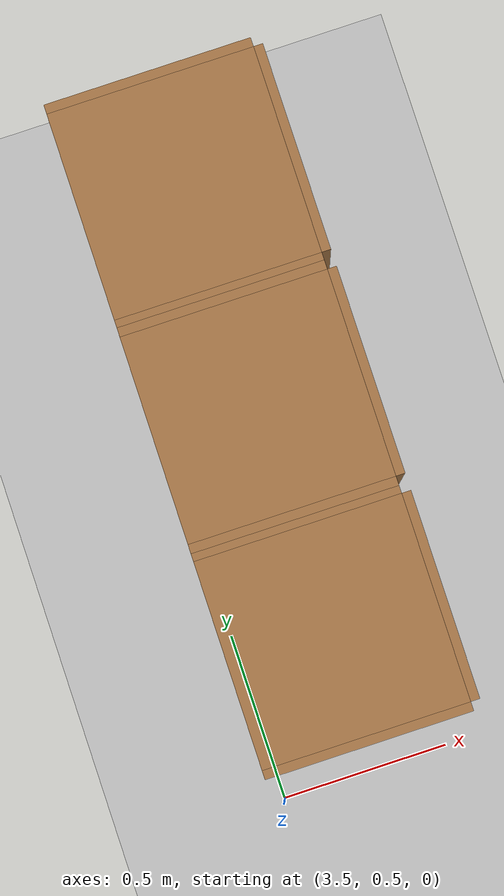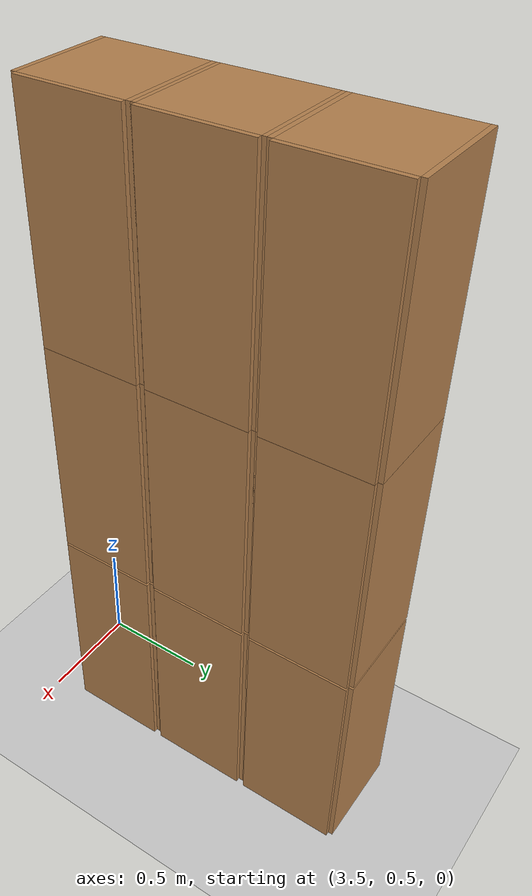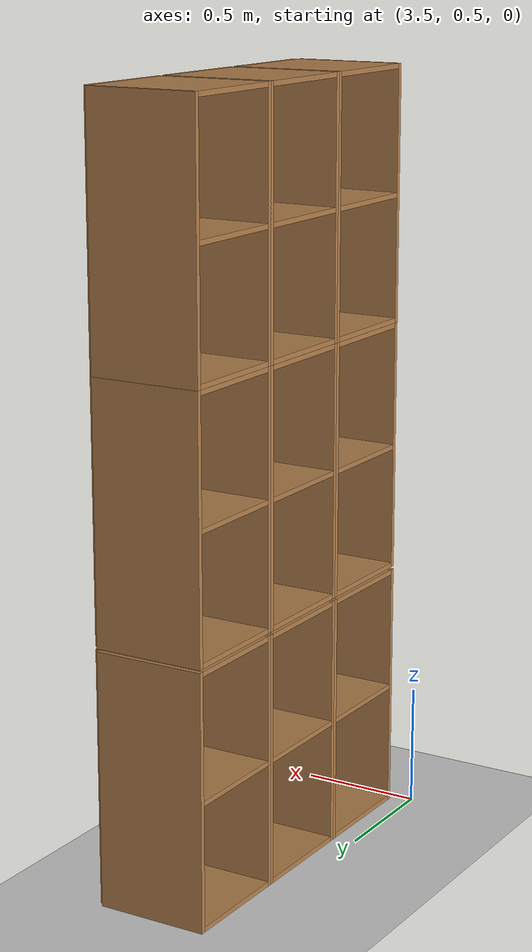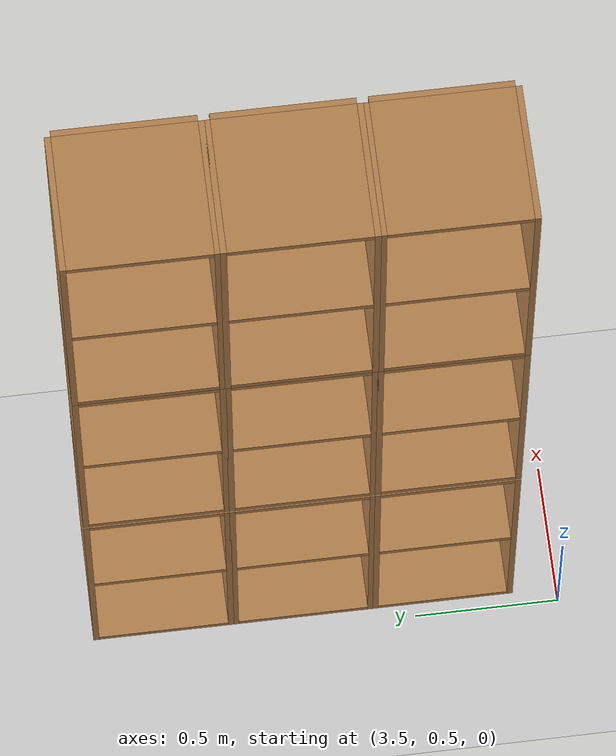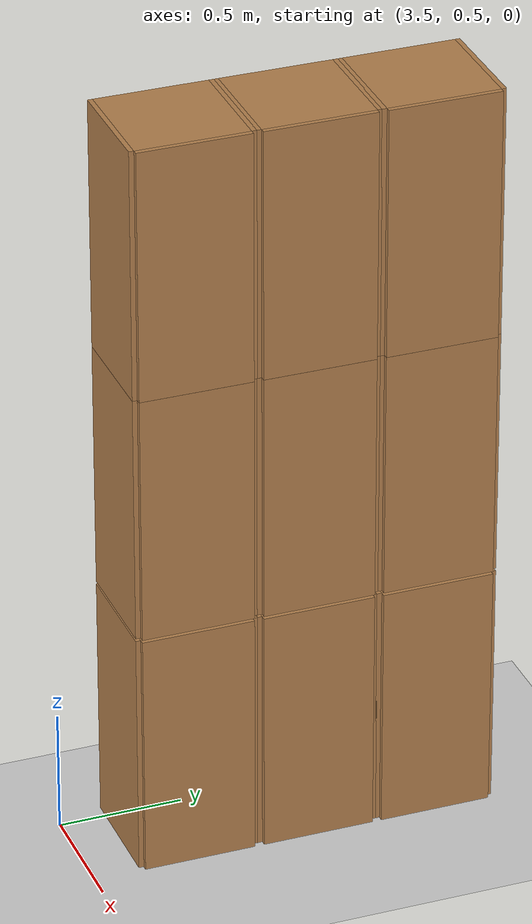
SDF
<sdf version="1.6">
 <world name="default">
  <model name="ground_plane">
   <static>1</static>
   <link name="link">
    <collision name="collision">
     <geometry><plane><normal>0 0 1</normal><size>100 100</size></plane></geometry>
     <surface>
      <contact><collide_bitmask>65535</collide_bitmask></contact>
      <friction><ode><mu>100</mu><mu2>50</mu2></ode></friction>
     </surface>
    </collision>
    <visual name="visual">
     <cast_shadows>0</cast_shadows>
     <geometry><plane><normal>0 0 1</normal><size>100 100</size></plane></geometry>
     <material>
      <script><uri>file://media/materials/scripts/gazebo.material</uri><name>Gazebo/Grey</name></script>
     </material>
    </visual>
   </link>
  </model>
  <model name="Locker18_clone_4_clone_1_clone_0">
   <model name="Locker18">
    <model name="Locker3">
     <model name="cabinet">
      <static>1</static>
      <link name="cabinet_bottom_plate">
       <inertial>
        <pose>0 0 -1 0 -0 0</pose>
        <inertia><ixx>2.05</ixx><ixy>0</ixy><ixz>0</ixz><iyy>2.05</iyy><iyz>0</iyz><izz>2.05</izz></inertia>
        <mass>25</mass>
       </inertial>
       <collision name="cabinet_bottom_plate_geom">
        <pose>0 0 0.01 0 -0 0</pose>
        <geometry><box><size>0.45 0.45 0.02</size></box></geometry>
       </collision>
       <visual name="cabinet_bottom_plate_geom_visual">
        <pose>0 0 0.01 0 -0 0</pose>
        <geometry><box><size>0.45 0.45 0.02</size></box></geometry>
        <material>
         <script><uri>file://media/materials/scripts/gazebo.material</uri><name>Gazebo/Wood</name></script>
        </material>
       </visual>
       <collision name="cabinet_bottom_plate_geom_cabinet_back_plate">
        <pose>0.235 0 0.51 0 -0 0</pose>
        <geometry><box><size>0.02 0.45 1.02</size></box></geometry>
       </collision>
       <visual name="cabinet_bottom_plate_geom_cabinet_back_plate_visual">
        <pose>0.235 0 0.51 0 -0 0</pose>
        <geometry><box><size>0.02 0.45 1.02</size></box></geometry>
        <material>
         <script><uri>file://media/materials/scripts/gazebo.material</uri><name>Gazebo/Wood</name></script>
        </material>
       </visual>
       <collision name="cabinet_bottom_plate_geom_cabinet_left_plate">
        <pose>0 0.235 0.51 0 -0 0</pose>
        <geometry><box><size>0.45 0.02 1.02</size></box></geometry>
       </collision>
       <visual name="cabinet_bottom_plate_geom_cabinet_left_plate_visual">
        <pose>0 0.235 0.51 0 -0 0</pose>
        <geometry><box><size>0.45 0.02 1.02</size></box></geometry>
        <material>
         <script><uri>file://media/materials/scripts/gazebo.material</uri><name>Gazebo/Wood</name></script>
        </material>
       </visual>
       <collision name="cabinet_bottom_plate_geom_cabinet_middle_plate">
        <pose>0 0 0.51 0 -0 0</pose>
        <geometry><box><size>0.45 0.45 0.02</size></box></geometry>
       </collision>
       <visual name="cabinet_bottom_plate_geom_cabinet_middle_plate_visual">
        <pose>0 0 0.51 0 -0 0</pose>
        <geometry><box><size>0.45 0.45 0.02</size></box></geometry>
        <material>
         <script><uri>file://media/materials/scripts/gazebo.material</uri><name>Gazebo/Wood</name></script>
        </material>
       </visual>
       <collision name="cabinet_bottom_plate_geom_cabinet_right_plate">
        <pose>0 -0.235 0.51 0 -0 0</pose>
        <geometry><box><size>0.45 0.02 1.02</size></box></geometry>
       </collision>
       <visual name="cabinet_bottom_plate_geom_cabinet_right_plate_visual">
        <pose>0 -0.235 0.51 0 -0 0</pose>
        <geometry><box><size>0.45 0.02 1.02</size></box></geometry>
        <material>
         <script><uri>file://media/materials/scripts/gazebo.material</uri><name>Gazebo/Wood</name></script>
        </material>
       </visual>
       <collision name="cabinet_bottom_plate_geom_cabinet_top_plate">
        <pose>0 0 1.01 0 -0 0</pose>
        <geometry><box><size>0.45 0.45 0.02</size></box></geometry>
       </collision>
       <visual name="cabinet_bottom_plate_geom_cabinet_top_plate_visual">
        <pose>0 0 1.01 0 -0 0</pose>
        <geometry><box><size>0.45 0.45 0.02</size></box></geometry>
        <material>
         <script><uri>file://media/materials/scripts/gazebo.material</uri><name>Gazebo/Wood</name></script>
        </material>
       </visual>
      </link>
      <pose>-0.676968 1.45758 0 0 -0 0</pose>
     </model>
     <model name="cabinet_clone">
      <static>1</static>
      <link name="cabinet_bottom_plate">
       <inertial>
        <pose>0 0 -1 0 -0 0</pose>
        <inertia><ixx>2.05</ixx><ixy>0</ixy><ixz>0</ixz><iyy>2.05</iyy><iyz>0</iyz><izz>2.05</izz></inertia>
        <mass>25</mass>
       </inertial>
       <collision name="cabinet_bottom_plate_geom">
        <pose>0 0 0.01 0 -0 0</pose>
        <geometry><box><size>0.45 0.45 0.02</size></box></geometry>
       </collision>
       <visual name="cabinet_bottom_plate_geom_visual">
        <pose>0 0 0.01 0 -0 0</pose>
        <geometry><box><size>0.45 0.45 0.02</size></box></geometry>
        <material>
         <script><uri>file://media/materials/scripts/gazebo.material</uri><name>Gazebo/Wood</name></script>
        </material>
       </visual>
       <collision name="cabinet_bottom_plate_geom_cabinet_back_plate">
        <pose>0.235 0 0.51 0 -0 0</pose>
        <geometry><box><size>0.02 0.45 1.02</size></box></geometry>
       </collision>
       <visual name="cabinet_bottom_plate_geom_cabinet_back_plate_visual">
        <pose>0.235 0 0.51 0 -0 0</pose>
        <geometry><box><size>0.02 0.45 1.02</size></box></geometry>
        <material>
         <script><uri>file://media/materials/scripts/gazebo.material</uri><name>Gazebo/Wood</name></script>
        </material>
       </visual>
       <collision name="cabinet_bottom_plate_geom_cabinet_left_plate">
        <pose>0 0.235 0.51 0 -0 0</pose>
        <geometry><box><size>0.45 0.02 1.02</size></box></geometry>
       </collision>
       <visual name="cabinet_bottom_plate_geom_cabinet_left_plate_visual">
        <pose>0 0.235 0.51 0 -0 0</pose>
        <geometry><box><size>0.45 0.02 1.02</size></box></geometry>
        <material>
         <script><uri>file://media/materials/scripts/gazebo.material</uri><name>Gazebo/Wood</name></script>
        </material>
       </visual>
       <collision name="cabinet_bottom_plate_geom_cabinet_middle_plate">
        <pose>0 0 0.51 0 -0 0</pose>
        <geometry><box><size>0.45 0.45 0.02</size></box></geometry>
       </collision>
       <visual name="cabinet_bottom_plate_geom_cabinet_middle_plate_visual">
        <pose>0 0 0.51 0 -0 0</pose>
        <geometry><box><size>0.45 0.45 0.02</size></box></geometry>
        <material>
         <script><uri>file://media/materials/scripts/gazebo.material</uri><name>Gazebo/Wood</name></script>
        </material>
       </visual>
       <collision name="cabinet_bottom_plate_geom_cabinet_right_plate">
        <pose>0 -0.235 0.51 0 -0 0</pose>
        <geometry><box><size>0.45 0.02 1.02</size></box></geometry>
       </collision>
       <visual name="cabinet_bottom_plate_geom_cabinet_right_plate_visual">
        <pose>0 -0.235 0.51 0 -0 0</pose>
        <geometry><box><size>0.45 0.02 1.02</size></box></geometry>
        <material>
         <script><uri>file://media/materials/scripts/gazebo.material</uri><name>Gazebo/Wood</name></script>
        </material>
       </visual>
       <collision name="cabinet_bottom_plate_geom_cabinet_top_plate">
        <pose>0 0 1.01 0 -0 0</pose>
        <geometry><box><size>0.45 0.45 0.02</size></box></geometry>
       </collision>
       <visual name="cabinet_bottom_plate_geom_cabinet_top_plate_visual">
        <pose>0 0 1.01 0 -0 0</pose>
        <geometry><box><size>0.45 0.45 0.02</size></box></geometry>
        <material>
         <script><uri>file://media/materials/scripts/gazebo.material</uri><name>Gazebo/Wood</name></script>
        </material>
       </visual>
      </link>
      <pose>-0.676968 0.970971 0 0 -0 0</pose>
     </model>
     <model name="cabinet_clone_0">
      <static>1</static>
      <link name="cabinet_bottom_plate">
       <inertial>
        <pose>0 0 -1 0 -0 0</pose>
        <inertia><ixx>2.05</ixx><ixy>0</ixy><ixz>0</ixz><iyy>2.05</iyy><iyz>0</iyz><izz>2.05</izz></inertia>
        <mass>25</mass>
       </inertial>
       <collision name="cabinet_bottom_plate_geom">
        <pose>0 0 0.01 0 -0 0</pose>
        <geometry><box><size>0.45 0.45 0.02</size></box></geometry>
       </collision>
       <visual name="cabinet_bottom_plate_geom_visual">
        <pose>0 0 0.01 0 -0 0</pose>
        <geometry><box><size>0.45 0.45 0.02</size></box></geometry>
        <material>
         <script><uri>file://media/materials/scripts/gazebo.material</uri><name>Gazebo/Wood</name></script>
        </material>
       </visual>
       <collision name="cabinet_bottom_plate_geom_cabinet_back_plate">
        <pose>0.235 0 0.51 0 -0 0</pose>
        <geometry><box><size>0.02 0.45 1.02</size></box></geometry>
       </collision>
       <visual name="cabinet_bottom_plate_geom_cabinet_back_plate_visual">
        <pose>0.235 0 0.51 0 -0 0</pose>
        <geometry><box><size>0.02 0.45 1.02</size></box></geometry>
        <material>
         <script><uri>file://media/materials/scripts/gazebo.material</uri><name>Gazebo/Wood</name></script>
        </material>
       </visual>
       <collision name="cabinet_bottom_plate_geom_cabinet_left_plate">
        <pose>0 0.235 0.51 0 -0 0</pose>
        <geometry><box><size>0.45 0.02 1.02</size></box></geometry>
       </collision>
       <visual name="cabinet_bottom_plate_geom_cabinet_left_plate_visual">
        <pose>0 0.235 0.51 0 -0 0</pose>
        <geometry><box><size>0.45 0.02 1.02</size></box></geometry>
        <material>
         <script><uri>file://media/materials/scripts/gazebo.material</uri><name>Gazebo/Wood</name></script>
        </material>
       </visual>
       <collision name="cabinet_bottom_plate_geom_cabinet_middle_plate">
        <pose>0 0 0.51 0 -0 0</pose>
        <geometry><box><size>0.45 0.45 0.02</size></box></geometry>
       </collision>
       <visual name="cabinet_bottom_plate_geom_cabinet_middle_plate_visual">
        <pose>0 0 0.51 0 -0 0</pose>
        <geometry><box><size>0.45 0.45 0.02</size></box></geometry>
        <material>
         <script><uri>file://media/materials/scripts/gazebo.material</uri><name>Gazebo/Wood</name></script>
        </material>
       </visual>
       <collision name="cabinet_bottom_plate_geom_cabinet_right_plate">
        <pose>0 -0.235 0.51 0 -0 0</pose>
        <geometry><box><size>0.45 0.02 1.02</size></box></geometry>
       </collision>
       <visual name="cabinet_bottom_plate_geom_cabinet_right_plate_visual">
        <pose>0 -0.235 0.51 0 -0 0</pose>
        <geometry><box><size>0.45 0.02 1.02</size></box></geometry>
        <material>
         <script><uri>file://media/materials/scripts/gazebo.material</uri><name>Gazebo/Wood</name></script>
        </material>
       </visual>
       <collision name="cabinet_bottom_plate_geom_cabinet_top_plate">
        <pose>0 0 1.01 0 -0 0</pose>
        <geometry><box><size>0.45 0.45 0.02</size></box></geometry>
       </collision>
       <visual name="cabinet_bottom_plate_geom_cabinet_top_plate_visual">
        <pose>0 0 1.01 0 -0 0</pose>
        <geometry><box><size>0.45 0.45 0.02</size></box></geometry>
        <material>
         <script><uri>file://media/materials/scripts/gazebo.material</uri><name>Gazebo/Wood</name></script>
        </material>
       </visual>
      </link>
      <pose>-0.676968 0.48391 0 0 -0 0</pose>
     </model>
     <static>0</static>
     <pose>0 3e-06 -1.02763 0 -0 0</pose>
    </model>
    <model name="Locker3_clone">
     <model name="cabinet">
      <static>1</static>
      <link name="cabinet_bottom_plate">
       <inertial>
        <pose>0 0 -1 0 -0 0</pose>
        <inertia><ixx>2.05</ixx><ixy>0</ixy><ixz>0</ixz><iyy>2.05</iyy><iyz>0</iyz><izz>2.05</izz></inertia>
        <mass>25</mass>
       </inertial>
       <collision name="cabinet_bottom_plate_geom">
        <pose>0 0 0.01 0 -0 0</pose>
        <geometry><box><size>0.45 0.45 0.02</size></box></geometry>
       </collision>
       <visual name="cabinet_bottom_plate_geom_visual">
        <pose>0 0 0.01 0 -0 0</pose>
        <geometry><box><size>0.45 0.45 0.02</size></box></geometry>
        <material>
         <script><uri>file://media/materials/scripts/gazebo.material</uri><name>Gazebo/Wood</name></script>
        </material>
       </visual>
       <collision name="cabinet_bottom_plate_geom_cabinet_back_plate">
        <pose>0.235 0 0.51 0 -0 0</pose>
        <geometry><box><size>0.02 0.45 1.02</size></box></geometry>
       </collision>
       <visual name="cabinet_bottom_plate_geom_cabinet_back_plate_visual">
        <pose>0.235 0 0.51 0 -0 0</pose>
        <geometry><box><size>0.02 0.45 1.02</size></box></geometry>
        <material>
         <script><uri>file://media/materials/scripts/gazebo.material</uri><name>Gazebo/Wood</name></script>
        </material>
       </visual>
       <collision name="cabinet_bottom_plate_geom_cabinet_left_plate">
        <pose>0 0.235 0.51 0 -0 0</pose>
        <geometry><box><size>0.45 0.02 1.02</size></box></geometry>
       </collision>
       <visual name="cabinet_bottom_plate_geom_cabinet_left_plate_visual">
        <pose>0 0.235 0.51 0 -0 0</pose>
        <geometry><box><size>0.45 0.02 1.02</size></box></geometry>
        <material>
         <script><uri>file://media/materials/scripts/gazebo.material</uri><name>Gazebo/Wood</name></script>
        </material>
       </visual>
       <collision name="cabinet_bottom_plate_geom_cabinet_middle_plate">
        <pose>0 0 0.51 0 -0 0</pose>
        <geometry><box><size>0.45 0.45 0.02</size></box></geometry>
       </collision>
       <visual name="cabinet_bottom_plate_geom_cabinet_middle_plate_visual">
        <pose>0 0 0.51 0 -0 0</pose>
        <geometry><box><size>0.45 0.45 0.02</size></box></geometry>
        <material>
         <script><uri>file://media/materials/scripts/gazebo.material</uri><name>Gazebo/Wood</name></script>
        </material>
       </visual>
       <collision name="cabinet_bottom_plate_geom_cabinet_right_plate">
        <pose>0 -0.235 0.51 0 -0 0</pose>
        <geometry><box><size>0.45 0.02 1.02</size></box></geometry>
       </collision>
       <visual name="cabinet_bottom_plate_geom_cabinet_right_plate_visual">
        <pose>0 -0.235 0.51 0 -0 0</pose>
        <geometry><box><size>0.45 0.02 1.02</size></box></geometry>
        <material>
         <script><uri>file://media/materials/scripts/gazebo.material</uri><name>Gazebo/Wood</name></script>
        </material>
       </visual>
       <collision name="cabinet_bottom_plate_geom_cabinet_top_plate">
        <pose>0 0 1.01 0 -0 0</pose>
        <geometry><box><size>0.45 0.45 0.02</size></box></geometry>
       </collision>
       <visual name="cabinet_bottom_plate_geom_cabinet_top_plate_visual">
        <pose>0 0 1.01 0 -0 0</pose>
        <geometry><box><size>0.45 0.45 0.02</size></box></geometry>
        <material>
         <script><uri>file://media/materials/scripts/gazebo.material</uri><name>Gazebo/Wood</name></script>
        </material>
       </visual>
      </link>
      <pose>-0.676968 1.45758 0 0 -0 0</pose>
     </model>
     <model name="cabinet_clone">
      <static>1</static>
      <link name="cabinet_bottom_plate">
       <inertial>
        <pose>0 0 -1 0 -0 0</pose>
        <inertia><ixx>2.05</ixx><ixy>0</ixy><ixz>0</ixz><iyy>2.05</iyy><iyz>0</iyz><izz>2.05</izz></inertia>
        <mass>25</mass>
       </inertial>
       <collision name="cabinet_bottom_plate_geom">
        <pose>0 0 0.01 0 -0 0</pose>
        <geometry><box><size>0.45 0.45 0.02</size></box></geometry>
       </collision>
       <visual name="cabinet_bottom_plate_geom_visual">
        <pose>0 0 0.01 0 -0 0</pose>
        <geometry><box><size>0.45 0.45 0.02</size></box></geometry>
        <material>
         <script><uri>file://media/materials/scripts/gazebo.material</uri><name>Gazebo/Wood</name></script>
        </material>
       </visual>
       <collision name="cabinet_bottom_plate_geom_cabinet_back_plate">
        <pose>0.235 0 0.51 0 -0 0</pose>
        <geometry><box><size>0.02 0.45 1.02</size></box></geometry>
       </collision>
       <visual name="cabinet_bottom_plate_geom_cabinet_back_plate_visual">
        <pose>0.235 0 0.51 0 -0 0</pose>
        <geometry><box><size>0.02 0.45 1.02</size></box></geometry>
        <material>
         <script><uri>file://media/materials/scripts/gazebo.material</uri><name>Gazebo/Wood</name></script>
        </material>
       </visual>
       <collision name="cabinet_bottom_plate_geom_cabinet_left_plate">
        <pose>0 0.235 0.51 0 -0 0</pose>
        <geometry><box><size>0.45 0.02 1.02</size></box></geometry>
       </collision>
       <visual name="cabinet_bottom_plate_geom_cabinet_left_plate_visual">
        <pose>0 0.235 0.51 0 -0 0</pose>
        <geometry><box><size>0.45 0.02 1.02</size></box></geometry>
        <material>
         <script><uri>file://media/materials/scripts/gazebo.material</uri><name>Gazebo/Wood</name></script>
        </material>
       </visual>
       <collision name="cabinet_bottom_plate_geom_cabinet_middle_plate">
        <pose>0 0 0.51 0 -0 0</pose>
        <geometry><box><size>0.45 0.45 0.02</size></box></geometry>
       </collision>
       <visual name="cabinet_bottom_plate_geom_cabinet_middle_plate_visual">
        <pose>0 0 0.51 0 -0 0</pose>
        <geometry><box><size>0.45 0.45 0.02</size></box></geometry>
        <material>
         <script><uri>file://media/materials/scripts/gazebo.material</uri><name>Gazebo/Wood</name></script>
        </material>
       </visual>
       <collision name="cabinet_bottom_plate_geom_cabinet_right_plate">
        <pose>0 -0.235 0.51 0 -0 0</pose>
        <geometry><box><size>0.45 0.02 1.02</size></box></geometry>
       </collision>
       <visual name="cabinet_bottom_plate_geom_cabinet_right_plate_visual">
        <pose>0 -0.235 0.51 0 -0 0</pose>
        <geometry><box><size>0.45 0.02 1.02</size></box></geometry>
        <material>
         <script><uri>file://media/materials/scripts/gazebo.material</uri><name>Gazebo/Wood</name></script>
        </material>
       </visual>
       <collision name="cabinet_bottom_plate_geom_cabinet_top_plate">
        <pose>0 0 1.01 0 -0 0</pose>
        <geometry><box><size>0.45 0.45 0.02</size></box></geometry>
       </collision>
       <visual name="cabinet_bottom_plate_geom_cabinet_top_plate_visual">
        <pose>0 0 1.01 0 -0 0</pose>
        <geometry><box><size>0.45 0.45 0.02</size></box></geometry>
        <material>
         <script><uri>file://media/materials/scripts/gazebo.material</uri><name>Gazebo/Wood</name></script>
        </material>
       </visual>
      </link>
      <pose>-0.676968 0.970971 0 0 -0 0</pose>
     </model>
     <model name="cabinet_clone_0">
      <static>1</static>
      <link name="cabinet_bottom_plate">
       <inertial>
        <pose>0 0 -1 0 -0 0</pose>
        <inertia><ixx>2.05</ixx><ixy>0</ixy><ixz>0</ixz><iyy>2.05</iyy><iyz>0</iyz><izz>2.05</izz></inertia>
        <mass>25</mass>
       </inertial>
       <collision name="cabinet_bottom_plate_geom">
        <pose>0 0 0.01 0 -0 0</pose>
        <geometry><box><size>0.45 0.45 0.02</size></box></geometry>
       </collision>
       <visual name="cabinet_bottom_plate_geom_visual">
        <pose>0 0 0.01 0 -0 0</pose>
        <geometry><box><size>0.45 0.45 0.02</size></box></geometry>
        <material>
         <script><uri>file://media/materials/scripts/gazebo.material</uri><name>Gazebo/Wood</name></script>
        </material>
       </visual>
       <collision name="cabinet_bottom_plate_geom_cabinet_back_plate">
        <pose>0.235 0 0.51 0 -0 0</pose>
        <geometry><box><size>0.02 0.45 1.02</size></box></geometry>
       </collision>
       <visual name="cabinet_bottom_plate_geom_cabinet_back_plate_visual">
        <pose>0.235 0 0.51 0 -0 0</pose>
        <geometry><box><size>0.02 0.45 1.02</size></box></geometry>
        <material>
         <script><uri>file://media/materials/scripts/gazebo.material</uri><name>Gazebo/Wood</name></script>
        </material>
       </visual>
       <collision name="cabinet_bottom_plate_geom_cabinet_left_plate">
        <pose>0 0.235 0.51 0 -0 0</pose>
        <geometry><box><size>0.45 0.02 1.02</size></box></geometry>
       </collision>
       <visual name="cabinet_bottom_plate_geom_cabinet_left_plate_visual">
        <pose>0 0.235 0.51 0 -0 0</pose>
        <geometry><box><size>0.45 0.02 1.02</size></box></geometry>
        <material>
         <script><uri>file://media/materials/scripts/gazebo.material</uri><name>Gazebo/Wood</name></script>
        </material>
       </visual>
       <collision name="cabinet_bottom_plate_geom_cabinet_middle_plate">
        <pose>0 0 0.51 0 -0 0</pose>
        <geometry><box><size>0.45 0.45 0.02</size></box></geometry>
       </collision>
       <visual name="cabinet_bottom_plate_geom_cabinet_middle_plate_visual">
        <pose>0 0 0.51 0 -0 0</pose>
        <geometry><box><size>0.45 0.45 0.02</size></box></geometry>
        <material>
         <script><uri>file://media/materials/scripts/gazebo.material</uri><name>Gazebo/Wood</name></script>
        </material>
       </visual>
       <collision name="cabinet_bottom_plate_geom_cabinet_right_plate">
        <pose>0 -0.235 0.51 0 -0 0</pose>
        <geometry><box><size>0.45 0.02 1.02</size></box></geometry>
       </collision>
       <visual name="cabinet_bottom_plate_geom_cabinet_right_plate_visual">
        <pose>0 -0.235 0.51 0 -0 0</pose>
        <geometry><box><size>0.45 0.02 1.02</size></box></geometry>
        <material>
         <script><uri>file://media/materials/scripts/gazebo.material</uri><name>Gazebo/Wood</name></script>
        </material>
       </visual>
       <collision name="cabinet_bottom_plate_geom_cabinet_top_plate">
        <pose>0 0 1.01 0 -0 0</pose>
        <geometry><box><size>0.45 0.45 0.02</size></box></geometry>
       </collision>
       <visual name="cabinet_bottom_plate_geom_cabinet_top_plate_visual">
        <pose>0 0 1.01 0 -0 0</pose>
        <geometry><box><size>0.45 0.45 0.02</size></box></geometry>
        <material>
         <script><uri>file://media/materials/scripts/gazebo.material</uri><name>Gazebo/Wood</name></script>
        </material>
       </visual>
      </link>
      <pose>-0.676968 0.48391 0 0 -0 0</pose>
     </model>
     <static>0</static>
     <pose>0 3e-06 0.003717 0 -0 0</pose>
    </model>
    <model name="Locker3_clone_clone">
     <model name="cabinet">
      <static>1</static>
      <link name="cabinet_bottom_plate">
       <inertial>
        <pose>0 0 -1 0 -0 0</pose>
        <inertia><ixx>2.05</ixx><ixy>0</ixy><ixz>0</ixz><iyy>2.05</iyy><iyz>0</iyz><izz>2.05</izz></inertia>
        <mass>25</mass>
       </inertial>
       <collision name="cabinet_bottom_plate_geom">
        <pose>0 0 0.01 0 -0 0</pose>
        <geometry><box><size>0.45 0.45 0.02</size></box></geometry>
       </collision>
       <visual name="cabinet_bottom_plate_geom_visual">
        <pose>0 0 0.01 0 -0 0</pose>
        <geometry><box><size>0.45 0.45 0.02</size></box></geometry>
        <material>
         <script><uri>file://media/materials/scripts/gazebo.material</uri><name>Gazebo/Wood</name></script>
        </material>
       </visual>
       <collision name="cabinet_bottom_plate_geom_cabinet_back_plate">
        <pose>0.235 0 0.51 0 -0 0</pose>
        <geometry><box><size>0.02 0.45 1.02</size></box></geometry>
       </collision>
       <visual name="cabinet_bottom_plate_geom_cabinet_back_plate_visual">
        <pose>0.235 0 0.51 0 -0 0</pose>
        <geometry><box><size>0.02 0.45 1.02</size></box></geometry>
        <material>
         <script><uri>file://media/materials/scripts/gazebo.material</uri><name>Gazebo/Wood</name></script>
        </material>
       </visual>
       <collision name="cabinet_bottom_plate_geom_cabinet_left_plate">
        <pose>0 0.235 0.51 0 -0 0</pose>
        <geometry><box><size>0.45 0.02 1.02</size></box></geometry>
       </collision>
       <visual name="cabinet_bottom_plate_geom_cabinet_left_plate_visual">
        <pose>0 0.235 0.51 0 -0 0</pose>
        <geometry><box><size>0.45 0.02 1.02</size></box></geometry>
        <material>
         <script><uri>file://media/materials/scripts/gazebo.material</uri><name>Gazebo/Wood</name></script>
        </material>
       </visual>
       <collision name="cabinet_bottom_plate_geom_cabinet_middle_plate">
        <pose>0 0 0.51 0 -0 0</pose>
        <geometry><box><size>0.45 0.45 0.02</size></box></geometry>
       </collision>
       <visual name="cabinet_bottom_plate_geom_cabinet_middle_plate_visual">
        <pose>0 0 0.51 0 -0 0</pose>
        <geometry><box><size>0.45 0.45 0.02</size></box></geometry>
        <material>
         <script><uri>file://media/materials/scripts/gazebo.material</uri><name>Gazebo/Wood</name></script>
        </material>
       </visual>
       <collision name="cabinet_bottom_plate_geom_cabinet_right_plate">
        <pose>0 -0.235 0.51 0 -0 0</pose>
        <geometry><box><size>0.45 0.02 1.02</size></box></geometry>
       </collision>
       <visual name="cabinet_bottom_plate_geom_cabinet_right_plate_visual">
        <pose>0 -0.235 0.51 0 -0 0</pose>
        <geometry><box><size>0.45 0.02 1.02</size></box></geometry>
        <material>
         <script><uri>file://media/materials/scripts/gazebo.material</uri><name>Gazebo/Wood</name></script>
        </material>
       </visual>
       <collision name="cabinet_bottom_plate_geom_cabinet_top_plate">
        <pose>0 0 1.01 0 -0 0</pose>
        <geometry><box><size>0.45 0.45 0.02</size></box></geometry>
       </collision>
       <visual name="cabinet_bottom_plate_geom_cabinet_top_plate_visual">
        <pose>0 0 1.01 0 -0 0</pose>
        <geometry><box><size>0.45 0.45 0.02</size></box></geometry>
        <material>
         <script><uri>file://media/materials/scripts/gazebo.material</uri><name>Gazebo/Wood</name></script>
        </material>
       </visual>
      </link>
      <pose>-0.676968 1.45758 0 0 -0 0</pose>
     </model>
     <model name="cabinet_clone">
      <static>1</static>
      <link name="cabinet_bottom_plate">
       <inertial>
        <pose>0 0 -1 0 -0 0</pose>
        <inertia><ixx>2.05</ixx><ixy>0</ixy><ixz>0</ixz><iyy>2.05</iyy><iyz>0</iyz><izz>2.05</izz></inertia>
        <mass>25</mass>
       </inertial>
       <collision name="cabinet_bottom_plate_geom">
        <pose>0 0 0.01 0 -0 0</pose>
        <geometry><box><size>0.45 0.45 0.02</size></box></geometry>
       </collision>
       <visual name="cabinet_bottom_plate_geom_visual">
        <pose>0 0 0.01 0 -0 0</pose>
        <geometry><box><size>0.45 0.45 0.02</size></box></geometry>
        <material>
         <script><uri>file://media/materials/scripts/gazebo.material</uri><name>Gazebo/Wood</name></script>
        </material>
       </visual>
       <collision name="cabinet_bottom_plate_geom_cabinet_back_plate">
        <pose>0.235 0 0.51 0 -0 0</pose>
        <geometry><box><size>0.02 0.45 1.02</size></box></geometry>
       </collision>
       <visual name="cabinet_bottom_plate_geom_cabinet_back_plate_visual">
        <pose>0.235 0 0.51 0 -0 0</pose>
        <geometry><box><size>0.02 0.45 1.02</size></box></geometry>
        <material>
         <script><uri>file://media/materials/scripts/gazebo.material</uri><name>Gazebo/Wood</name></script>
        </material>
       </visual>
       <collision name="cabinet_bottom_plate_geom_cabinet_left_plate">
        <pose>0 0.235 0.51 0 -0 0</pose>
        <geometry><box><size>0.45 0.02 1.02</size></box></geometry>
       </collision>
       <visual name="cabinet_bottom_plate_geom_cabinet_left_plate_visual">
        <pose>0 0.235 0.51 0 -0 0</pose>
        <geometry><box><size>0.45 0.02 1.02</size></box></geometry>
        <material>
         <script><uri>file://media/materials/scripts/gazebo.material</uri><name>Gazebo/Wood</name></script>
        </material>
       </visual>
       <collision name="cabinet_bottom_plate_geom_cabinet_middle_plate">
        <pose>0 0 0.51 0 -0 0</pose>
        <geometry><box><size>0.45 0.45 0.02</size></box></geometry>
       </collision>
       <visual name="cabinet_bottom_plate_geom_cabinet_middle_plate_visual">
        <pose>0 0 0.51 0 -0 0</pose>
        <geometry><box><size>0.45 0.45 0.02</size></box></geometry>
        <material>
         <script><uri>file://media/materials/scripts/gazebo.material</uri><name>Gazebo/Wood</name></script>
        </material>
       </visual>
       <collision name="cabinet_bottom_plate_geom_cabinet_right_plate">
        <pose>0 -0.235 0.51 0 -0 0</pose>
        <geometry><box><size>0.45 0.02 1.02</size></box></geometry>
       </collision>
       <visual name="cabinet_bottom_plate_geom_cabinet_right_plate_visual">
        <pose>0 -0.235 0.51 0 -0 0</pose>
        <geometry><box><size>0.45 0.02 1.02</size></box></geometry>
        <material>
         <script><uri>file://media/materials/scripts/gazebo.material</uri><name>Gazebo/Wood</name></script>
        </material>
       </visual>
       <collision name="cabinet_bottom_plate_geom_cabinet_top_plate">
        <pose>0 0 1.01 0 -0 0</pose>
        <geometry><box><size>0.45 0.45 0.02</size></box></geometry>
       </collision>
       <visual name="cabinet_bottom_plate_geom_cabinet_top_plate_visual">
        <pose>0 0 1.01 0 -0 0</pose>
        <geometry><box><size>0.45 0.45 0.02</size></box></geometry>
        <material>
         <script><uri>file://media/materials/scripts/gazebo.material</uri><name>Gazebo/Wood</name></script>
        </material>
       </visual>
      </link>
      <pose>-0.676968 0.970971 0 0 -0 0</pose>
     </model>
     <model name="cabinet_clone_0">
      <static>1</static>
      <link name="cabinet_bottom_plate">
       <inertial>
        <pose>0 0 -1 0 -0 0</pose>
        <inertia><ixx>2.05</ixx><ixy>0</ixy><ixz>0</ixz><iyy>2.05</iyy><iyz>0</iyz><izz>2.05</izz></inertia>
        <mass>25</mass>
       </inertial>
       <collision name="cabinet_bottom_plate_geom">
        <pose>0 0 0.01 0 -0 0</pose>
        <geometry><box><size>0.45 0.45 0.02</size></box></geometry>
       </collision>
       <visual name="cabinet_bottom_plate_geom_visual">
        <pose>0 0 0.01 0 -0 0</pose>
        <geometry><box><size>0.45 0.45 0.02</size></box></geometry>
        <material>
         <script><uri>file://media/materials/scripts/gazebo.material</uri><name>Gazebo/Wood</name></script>
        </material>
       </visual>
       <collision name="cabinet_bottom_plate_geom_cabinet_back_plate">
        <pose>0.235 0 0.51 0 -0 0</pose>
        <geometry><box><size>0.02 0.45 1.02</size></box></geometry>
       </collision>
       <visual name="cabinet_bottom_plate_geom_cabinet_back_plate_visual">
        <pose>0.235 0 0.51 0 -0 0</pose>
        <geometry><box><size>0.02 0.45 1.02</size></box></geometry>
        <material>
         <script><uri>file://media/materials/scripts/gazebo.material</uri><name>Gazebo/Wood</name></script>
        </material>
       </visual>
       <collision name="cabinet_bottom_plate_geom_cabinet_left_plate">
        <pose>0 0.235 0.51 0 -0 0</pose>
        <geometry><box><size>0.45 0.02 1.02</size></box></geometry>
       </collision>
       <visual name="cabinet_bottom_plate_geom_cabinet_left_plate_visual">
        <pose>0 0.235 0.51 0 -0 0</pose>
        <geometry><box><size>0.45 0.02 1.02</size></box></geometry>
        <material>
         <script><uri>file://media/materials/scripts/gazebo.material</uri><name>Gazebo/Wood</name></script>
        </material>
       </visual>
       <collision name="cabinet_bottom_plate_geom_cabinet_middle_plate">
        <pose>0 0 0.51 0 -0 0</pose>
        <geometry><box><size>0.45 0.45 0.02</size></box></geometry>
       </collision>
       <visual name="cabinet_bottom_plate_geom_cabinet_middle_plate_visual">
        <pose>0 0 0.51 0 -0 0</pose>
        <geometry><box><size>0.45 0.45 0.02</size></box></geometry>
        <material>
         <script><uri>file://media/materials/scripts/gazebo.material</uri><name>Gazebo/Wood</name></script>
        </material>
       </visual>
       <collision name="cabinet_bottom_plate_geom_cabinet_right_plate">
        <pose>0 -0.235 0.51 0 -0 0</pose>
        <geometry><box><size>0.45 0.02 1.02</size></box></geometry>
       </collision>
       <visual name="cabinet_bottom_plate_geom_cabinet_right_plate_visual">
        <pose>0 -0.235 0.51 0 -0 0</pose>
        <geometry><box><size>0.45 0.02 1.02</size></box></geometry>
        <material>
         <script><uri>file://media/materials/scripts/gazebo.material</uri><name>Gazebo/Wood</name></script>
        </material>
       </visual>
       <collision name="cabinet_bottom_plate_geom_cabinet_top_plate">
        <pose>0 0 1.01 0 -0 0</pose>
        <geometry><box><size>0.45 0.45 0.02</size></box></geometry>
       </collision>
       <visual name="cabinet_bottom_plate_geom_cabinet_top_plate_visual">
        <pose>0 0 1.01 0 -0 0</pose>
        <geometry><box><size>0.45 0.45 0.02</size></box></geometry>
        <material>
         <script><uri>file://media/materials/scripts/gazebo.material</uri><name>Gazebo/Wood</name></script>
        </material>
       </visual>
      </link>
      <pose>-0.676968 0.48391 0 0 -0 0</pose>
     </model>
     <static>0</static>
     <pose>0 3e-06 1.02391 0 -0 0</pose>
    </model>
    <static>0</static>
    <pose>-0 4e-06 4e-06 0 -0 0</pose>
   </model>
   <static>0</static>
   <pose>4.42561 0.419303 1.08672 0 -0 0</pose>
  </model>
 </world>
</sdf>
